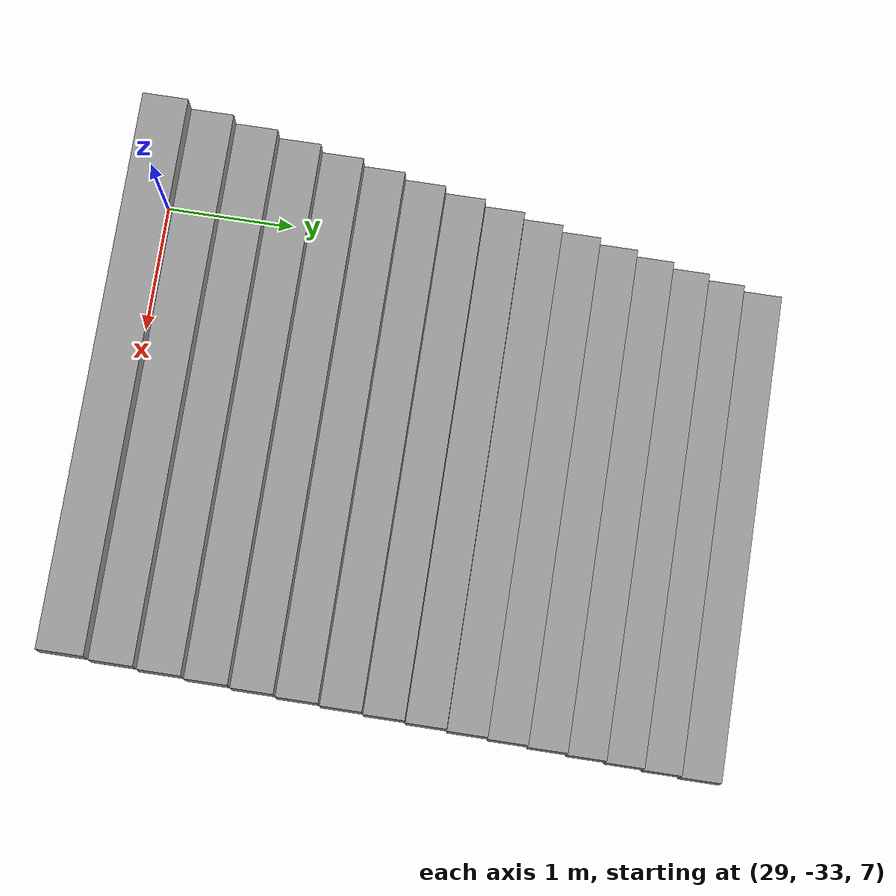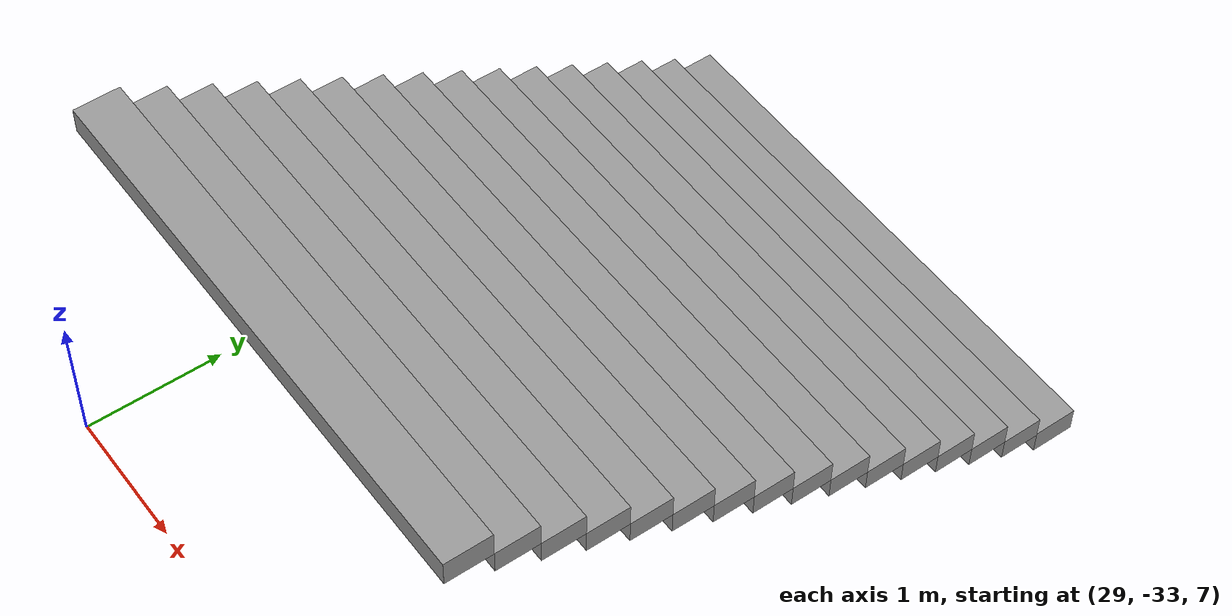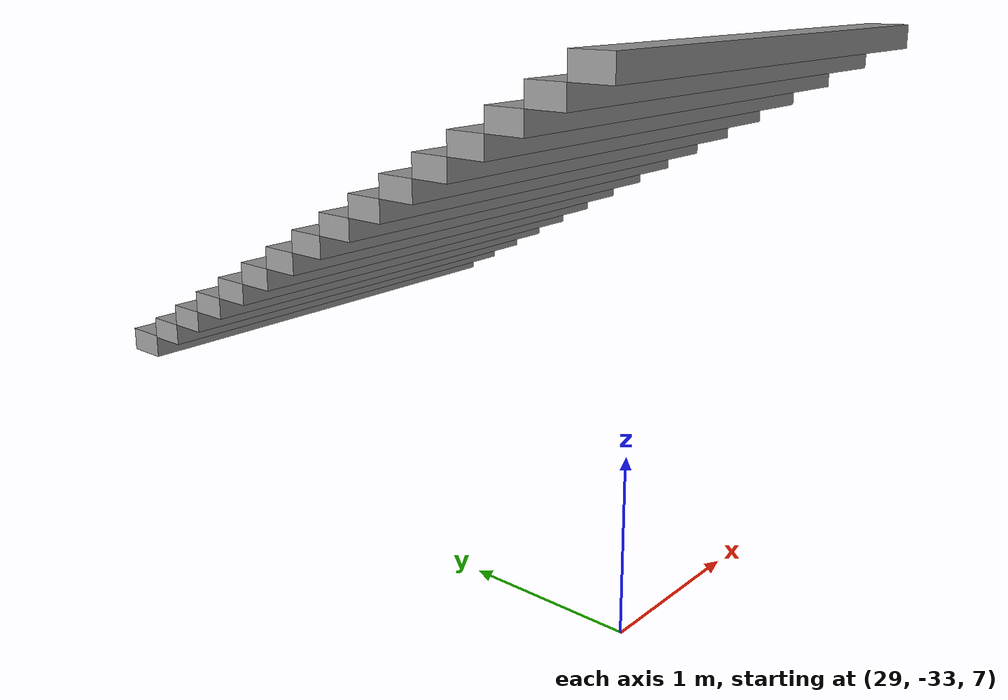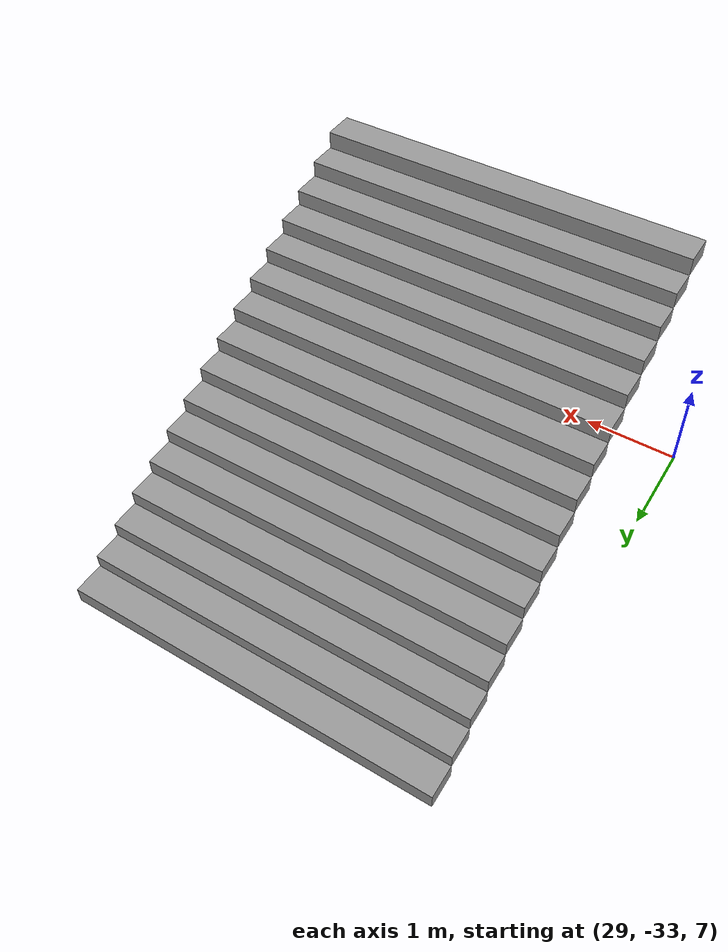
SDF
<sdf version="1.7">
 <world name="world">
  <include><uri>model://sun</uri></include>
  <model name="stairs_new_clone_0_clone">
   <pose>31.03 -26.62000 7.565 0 -0 -1.570796</pose>
   <link name="Stairs">
    <pose>3 1e-06 0 0 -0 0</pose>
    <inertial>
     <mass>1</mass>
     <inertia><ixx>1</ixx><ixy>0</ixy><ixz>0</ixz><iyy>1</iyy><iyz>0</iyz><izz>1</izz></inertia>
    </inertial>
    <visual name="Stairs_Visual_7">
     <pose>0.70875 0 1.09375 0 -0 1.5708</pose>
     <geometry><box><size>3.66 0.28125 0.15625</size></box></geometry>
     <material>
      <script><uri>file://media/materials/scripts/gazebo.material</uri><name>Gazebo/Grey</name></script>
      <ambient>1 1 1 1</ambient>
      <shader type="pixel"><normal_map>__default__</normal_map></shader>
      <diffuse>0.7 0.7 0.7 1</diffuse>
      <specular>0.01 0.01 0.01 1</specular>
      <emissive>0 0 0 1</emissive>
     </material>
     <meta><layer>0</layer></meta>
    </visual>
    <visual name="Stairs_Visual_10">
     <pose>1.5525 0 1.5625 0 -0 1.5708</pose>
     <geometry><box><size>3.66 0.28125 0.15625</size></box></geometry>
     <material>
      <script><uri>file://media/materials/scripts/gazebo.material</uri><name>Gazebo/Grey</name></script>
      <ambient>1 1 1 1</ambient>
      <shader type="pixel"><normal_map>__default__</normal_map></shader>
      <diffuse>0.7 0.7 0.7 1</diffuse>
      <specular>0.01 0.01 0.01 1</specular>
      <emissive>0 0 0 1</emissive>
     </material>
     <meta><layer>0</layer></meta>
    </visual>
    <visual name="Stairs_Visual_11">
     <pose>1.83375 0 1.71875 0 -0 1.5708</pose>
     <geometry><box><size>3.66 0.28125 0.15625</size></box></geometry>
     <material>
      <script><uri>file://media/materials/scripts/gazebo.material</uri><name>Gazebo/Grey</name></script>
      <ambient>1 1 1 1</ambient>
      <shader type="pixel"><normal_map>__default__</normal_map></shader>
      <diffuse>0.7 0.7 0.7 1</diffuse>
      <specular>0.01 0.01 0.01 1</specular>
      <emissive>0 0 0 1</emissive>
     </material>
     <meta><layer>0</layer></meta>
    </visual>
    <visual name="Stairs_Visual_1">
     <pose>-0.97875 0 0.15625 0 -0 1.5708</pose>
     <geometry><box><size>3.66 0.28125 0.15625</size></box></geometry>
     <material>
      <script><uri>file://media/materials/scripts/gazebo.material</uri><name>Gazebo/Grey</name></script>
      <ambient>1 1 1 1</ambient>
      <shader type="pixel"><normal_map>__default__</normal_map></shader>
      <diffuse>0.7 0.7 0.7 1</diffuse>
      <specular>0.01 0.01 0.01 1</specular>
      <emissive>0 0 0 1</emissive>
     </material>
     <meta><layer>0</layer></meta>
    </visual>
    <visual name="Stairs_Visual_8">
     <pose>0.99 0 1.25 0 -0 1.5708</pose>
     <geometry><box><size>3.66 0.28125 0.15625</size></box></geometry>
     <material>
      <script><uri>file://media/materials/scripts/gazebo.material</uri><name>Gazebo/Grey</name></script>
      <ambient>1 1 1 1</ambient>
      <shader type="pixel"><normal_map>__default__</normal_map></shader>
      <diffuse>0.7 0.7 0.7 1</diffuse>
      <specular>0.01 0.01 0.01 1</specular>
      <emissive>0 0 0 1</emissive>
     </material>
     <meta><layer>0</layer></meta>
    </visual>
    <visual name="Stairs_Visual_2">
     <pose>-0.6975 0 0.3125 0 -0 1.5708</pose>
     <geometry><box><size>3.66 0.28125 0.15625</size></box></geometry>
     <material>
      <script><uri>file://media/materials/scripts/gazebo.material</uri><name>Gazebo/Grey</name></script>
      <ambient>1 1 1 1</ambient>
      <shader type="pixel"><normal_map>__default__</normal_map></shader>
      <diffuse>0.7 0.7 0.7 1</diffuse>
      <specular>0.01 0.01 0.01 1</specular>
      <emissive>0 0 0 1</emissive>
     </material>
     <meta><layer>0</layer></meta>
    </visual>
    <visual name="Stairs_Visual_0">
     <pose>-1.27 0 0.005 0 -0 1.5708</pose>
     <geometry><box><size>3.66 0.3 0.17</size></box></geometry>
     <material>
      <script><uri>file://media/materials/scripts/gazebo.material</uri><name>Gazebo/Grey</name></script>
      <ambient>1 1 1 1</ambient>
      <shader type="pixel"><normal_map>__default__</normal_map></shader>
      <diffuse>0.7 0.7 0.7 1</diffuse>
      <specular>0.01 0.01 0.01 1</specular>
      <emissive>0 0 0 1</emissive>
     </material>
     <meta><layer>0</layer></meta>
    </visual>
    <visual name="Stairs_Visual_12">
     <pose>2.115 0 1.875 0 -0 1.5708</pose>
     <geometry><box><size>3.66 0.28125 0.15625</size></box></geometry>
     <material>
      <script><uri>file://media/materials/scripts/gazebo.material</uri><name>Gazebo/Grey</name></script>
      <ambient>1 1 1 1</ambient>
      <shader type="pixel"><normal_map>__default__</normal_map></shader>
      <diffuse>0.7 0.7 0.7 1</diffuse>
      <specular>0.01 0.01 0.01 1</specular>
      <emissive>0 0 0 1</emissive>
     </material>
     <meta><layer>0</layer></meta>
    </visual>
    <visual name="Stairs_Visual_9">
     <pose>1.27125 0 1.40625 0 -0 1.5708</pose>
     <geometry><box><size>3.66 0.28125 0.15625</size></box></geometry>
     <material>
      <script><uri>file://media/materials/scripts/gazebo.material</uri><name>Gazebo/Grey</name></script>
      <ambient>1 1 1 1</ambient>
      <shader type="pixel"><normal_map>__default__</normal_map></shader>
      <diffuse>0.7 0.7 0.7 1</diffuse>
      <specular>0.01 0.01 0.01 1</specular>
      <emissive>0 0 0 1</emissive>
     </material>
     <meta><layer>0</layer></meta>
    </visual>
    <visual name="Stairs_Visual_13">
     <pose>2.39625 0 2.03125 0 -0 1.5708</pose>
     <geometry><box><size>3.66 0.28125 0.15625</size></box></geometry>
     <material>
      <script><uri>file://media/materials/scripts/gazebo.material</uri><name>Gazebo/Grey</name></script>
      <ambient>1 1 1 1</ambient>
      <shader type="pixel"><normal_map>__default__</normal_map></shader>
      <diffuse>0.7 0.7 0.7 1</diffuse>
      <specular>0.01 0.01 0.01 1</specular>
      <emissive>0 0 0 1</emissive>
     </material>
     <meta><layer>0</layer></meta>
    </visual>
    <visual name="Stairs_Visual_4">
     <pose>-0.135 0 0.625 0 -0 1.5708</pose>
     <geometry><box><size>3.66 0.28125 0.15625</size></box></geometry>
     <material>
      <script><uri>file://media/materials/scripts/gazebo.material</uri><name>Gazebo/Grey</name></script>
      <ambient>1 1 1 1</ambient>
      <shader type="pixel"><normal_map>__default__</normal_map></shader>
      <diffuse>0.7 0.7 0.7 1</diffuse>
      <specular>0.01 0.01 0.01 1</specular>
      <emissive>0 0 0 1</emissive>
     </material>
     <meta><layer>0</layer></meta>
    </visual>
    <visual name="Stairs_Visual_5">
     <pose>0.14625 0 0.78125 0 -0 1.5708</pose>
     <geometry><box><size>3.66 0.28125 0.15625</size></box></geometry>
     <material>
      <script><uri>file://media/materials/scripts/gazebo.material</uri><name>Gazebo/Grey</name></script>
      <ambient>1 1 1 1</ambient>
      <shader type="pixel"><normal_map>__default__</normal_map></shader>
      <diffuse>0.7 0.7 0.7 1</diffuse>
      <specular>0.01 0.01 0.01 1</specular>
      <emissive>0 0 0 1</emissive>
     </material>
     <meta><layer>0</layer></meta>
    </visual>
    <visual name="Stairs_Visual_15">
     <pose>2.969 0 2.35 0 -0 1.5708</pose>
     <geometry><box><size>3.66 0.3 0.17</size></box></geometry>
     <material>
      <script><uri>file://media/materials/scripts/gazebo.material</uri><name>Gazebo/Grey</name></script>
      <ambient>1 1 1 1</ambient>
      <shader type="pixel"><normal_map>__default__</normal_map></shader>
      <diffuse>0.7 0.7 0.7 1</diffuse>
      <specular>0.01 0.01 0.01 1</specular>
      <emissive>0 0 0 1</emissive>
     </material>
     <meta><layer>0</layer></meta>
    </visual>
    <visual name="Stairs_Visual_3">
     <pose>-0.41625 0 0.46875 0 -0 1.5708</pose>
     <geometry><box><size>3.66 0.28125 0.15625</size></box></geometry>
     <material>
      <script><uri>file://media/materials/scripts/gazebo.material</uri><name>Gazebo/Grey</name></script>
      <ambient>1 1 1 1</ambient>
      <shader type="pixel"><normal_map>__default__</normal_map></shader>
      <diffuse>0.7 0.7 0.7 1</diffuse>
      <specular>0.01 0.01 0.01 1</specular>
      <emissive>0 0 0 1</emissive>
     </material>
     <meta><layer>0</layer></meta>
    </visual>
    <visual name="Stairs_Visual_6">
     <pose>0.4275 0 0.9375 0 -0 1.5708</pose>
     <geometry><box><size>3.66 0.28125 0.15625</size></box></geometry>
     <material>
      <script><uri>file://media/materials/scripts/gazebo.material</uri><name>Gazebo/Grey</name></script>
      <ambient>1 1 1 1</ambient>
      <shader type="pixel"><normal_map>__default__</normal_map></shader>
      <diffuse>0.7 0.7 0.7 1</diffuse>
      <specular>0.01 0.01 0.01 1</specular>
      <emissive>0 0 0 1</emissive>
     </material>
     <meta><layer>0</layer></meta>
    </visual>
    <visual name="Stairs_Visual_14">
     <pose>2.6775 0 2.1875 0 -0 1.5708</pose>
     <geometry><box><size>3.66 0.28125 0.15625</size></box></geometry>
     <material>
      <script><uri>file://media/materials/scripts/gazebo.material</uri><name>Gazebo/Grey</name></script>
      <ambient>1 1 1 1</ambient>
      <shader type="pixel"><normal_map>__default__</normal_map></shader>
      <diffuse>0.7 0.7 0.7 1</diffuse>
      <specular>0.01 0.01 0.01 1</specular>
      <emissive>0 0 0 1</emissive>
     </material>
     <meta><layer>0</layer></meta>
    </visual>
    <collision name="Stairs_Collision_9">
     <pose>1.27125 0 1.40625 0 -0 1.5708</pose>
     <geometry><box><size>3.66 0.28125 0.15625</size></box></geometry>
     <surface>
      <friction>
       <ode><mu>1</mu><mu2>1</mu2><fdir1>0 0 0</fdir1><slip1>0</slip1><slip2>0</slip2></ode>
       <torsional>
        <coefficient>1</coefficient>
        <patch_radius>0</patch_radius>
        <surface_radius>0</surface_radius>
        <use_patch_radius>1</use_patch_radius>
        <ode><slip>0</slip></ode>
       </torsional>
      </friction>
      <bounce><restitution_coefficient>0</restitution_coefficient><threshold>1e+06</threshold></bounce>
      <contact>
       <collide_without_contact>0</collide_without_contact>
       <collide_without_contact_bitmask>1</collide_without_contact_bitmask>
       <collide_bitmask>1</collide_bitmask>
       <ode>
        <soft_cfm>0</soft_cfm>
        <soft_erp>0.2</soft_erp>
        <kp>1e+13</kp>
        <kd>1</kd>
        <max_vel>0.01</max_vel>
        <min_depth>0</min_depth>
       </ode>
       <bullet>
        <split_impulse>1</split_impulse>
        <split_impulse_penetration_threshold>-0.01</split_impulse_penetration_threshold>
        <soft_cfm>0</soft_cfm>
        <soft_erp>0.2</soft_erp>
        <kp>1e+13</kp>
        <kd>1</kd>
       </bullet>
      </contact>
     </surface>
    </collision>
    <collision name="Stairs_Collision_1">
     <pose>-0.97875 0 0.15625 0 -0 1.5708</pose>
     <geometry><box><size>3.66 0.3 0.1566</size></box></geometry>
     <surface>
      <friction>
       <ode><mu>1</mu><mu2>1</mu2><fdir1>0 0 0</fdir1><slip1>0</slip1><slip2>0</slip2></ode>
       <torsional>
        <coefficient>1</coefficient>
        <patch_radius>0</patch_radius>
        <surface_radius>0</surface_radius>
        <use_patch_radius>1</use_patch_radius>
        <ode><slip>0</slip></ode>
       </torsional>
      </friction>
      <bounce><restitution_coefficient>0</restitution_coefficient><threshold>1e+06</threshold></bounce>
      <contact>
       <collide_without_contact>0</collide_without_contact>
       <collide_without_contact_bitmask>1</collide_without_contact_bitmask>
       <collide_bitmask>1</collide_bitmask>
       <ode>
        <soft_cfm>0</soft_cfm>
        <soft_erp>0.2</soft_erp>
        <kp>1e+13</kp>
        <kd>1</kd>
        <max_vel>0.01</max_vel>
        <min_depth>0</min_depth>
       </ode>
       <bullet>
        <split_impulse>1</split_impulse>
        <split_impulse_penetration_threshold>-0.01</split_impulse_penetration_threshold>
        <soft_cfm>0</soft_cfm>
        <soft_erp>0.2</soft_erp>
        <kp>1e+13</kp>
        <kd>1</kd>
       </bullet>
      </contact>
     </surface>
    </collision>
    <collision name="Stairs_Collision_6">
     <pose>0.4275 0 0.9375 0 -0 1.5708</pose>
     <geometry><box><size>3.66 0.28125 0.15625</size></box></geometry>
     <surface>
      <friction>
       <ode><mu>1</mu><mu2>1</mu2><fdir1>0 0 0</fdir1><slip1>0</slip1><slip2>0</slip2></ode>
       <torsional>
        <coefficient>1</coefficient>
        <patch_radius>0</patch_radius>
        <surface_radius>0</surface_radius>
        <use_patch_radius>1</use_patch_radius>
        <ode><slip>0</slip></ode>
       </torsional>
      </friction>
      <bounce><restitution_coefficient>0</restitution_coefficient><threshold>1e+06</threshold></bounce>
      <contact>
       <collide_without_contact>0</collide_without_contact>
       <collide_without_contact_bitmask>1</collide_without_contact_bitmask>
       <collide_bitmask>1</collide_bitmask>
       <ode>
        <soft_cfm>0</soft_cfm>
        <soft_erp>0.2</soft_erp>
        <kp>1e+13</kp>
        <kd>1</kd>
        <max_vel>0.01</max_vel>
        <min_depth>0</min_depth>
       </ode>
       <bullet>
        <split_impulse>1</split_impulse>
        <split_impulse_penetration_threshold>-0.01</split_impulse_penetration_threshold>
        <soft_cfm>0</soft_cfm>
        <soft_erp>0.2</soft_erp>
        <kp>1e+13</kp>
        <kd>1</kd>
       </bullet>
      </contact>
     </surface>
    </collision>
    <collision name="Stairs_Collision_7">
     <pose>0.70875 0 1.09375 0 -0 1.5708</pose>
     <geometry><box><size>3.66 0.28125 0.15625</size></box></geometry>
     <surface>
      <friction>
       <ode><mu>1</mu><mu2>1</mu2><fdir1>0 0 0</fdir1><slip1>0</slip1><slip2>0</slip2></ode>
       <torsional>
        <coefficient>1</coefficient>
        <patch_radius>0</patch_radius>
        <surface_radius>0</surface_radius>
        <use_patch_radius>1</use_patch_radius>
        <ode><slip>0</slip></ode>
       </torsional>
      </friction>
      <bounce><restitution_coefficient>0</restitution_coefficient><threshold>1e+06</threshold></bounce>
      <contact>
       <collide_without_contact>0</collide_without_contact>
       <collide_without_contact_bitmask>1</collide_without_contact_bitmask>
       <collide_bitmask>1</collide_bitmask>
       <ode>
        <soft_cfm>0</soft_cfm>
        <soft_erp>0.2</soft_erp>
        <kp>1e+13</kp>
        <kd>1</kd>
        <max_vel>0.01</max_vel>
        <min_depth>0</min_depth>
       </ode>
       <bullet>
        <split_impulse>1</split_impulse>
        <split_impulse_penetration_threshold>-0.01</split_impulse_penetration_threshold>
        <soft_cfm>0</soft_cfm>
        <soft_erp>0.2</soft_erp>
        <kp>1e+13</kp>
        <kd>1</kd>
       </bullet>
      </contact>
     </surface>
    </collision>
    <collision name="Stairs_Collision_5">
     <pose>0.14625 0 0.78125 0 -0 1.5708</pose>
     <geometry><box><size>3.66 0.28125 0.15625</size></box></geometry>
     <surface>
      <friction>
       <ode><mu>1</mu><mu2>1</mu2><fdir1>0 0 0</fdir1><slip1>0</slip1><slip2>0</slip2></ode>
       <torsional>
        <coefficient>1</coefficient>
        <patch_radius>0</patch_radius>
        <surface_radius>0</surface_radius>
        <use_patch_radius>1</use_patch_radius>
        <ode><slip>0</slip></ode>
       </torsional>
      </friction>
      <bounce><restitution_coefficient>0</restitution_coefficient><threshold>1e+06</threshold></bounce>
      <contact>
       <collide_without_contact>0</collide_without_contact>
       <collide_without_contact_bitmask>1</collide_without_contact_bitmask>
       <collide_bitmask>1</collide_bitmask>
       <ode>
        <soft_cfm>0</soft_cfm>
        <soft_erp>0.2</soft_erp>
        <kp>1e+13</kp>
        <kd>1</kd>
        <max_vel>0.01</max_vel>
        <min_depth>0</min_depth>
       </ode>
       <bullet>
        <split_impulse>1</split_impulse>
        <split_impulse_penetration_threshold>-0.01</split_impulse_penetration_threshold>
        <soft_cfm>0</soft_cfm>
        <soft_erp>0.2</soft_erp>
        <kp>1e+13</kp>
        <kd>1</kd>
       </bullet>
      </contact>
     </surface>
    </collision>
    <collision name="Stairs_Collision_10">
     <pose>1.5525 0 1.5625 0 -0 1.5708</pose>
     <geometry><box><size>3.66 0.28125 0.15625</size></box></geometry>
     <surface>
      <friction>
       <ode><mu>1</mu><mu2>1</mu2><fdir1>0 0 0</fdir1><slip1>0</slip1><slip2>0</slip2></ode>
       <torsional>
        <coefficient>1</coefficient>
        <patch_radius>0</patch_radius>
        <surface_radius>0</surface_radius>
        <use_patch_radius>1</use_patch_radius>
        <ode><slip>0</slip></ode>
       </torsional>
      </friction>
      <bounce><restitution_coefficient>0</restitution_coefficient><threshold>1e+06</threshold></bounce>
      <contact>
       <collide_without_contact>0</collide_without_contact>
       <collide_without_contact_bitmask>1</collide_without_contact_bitmask>
       <collide_bitmask>1</collide_bitmask>
       <ode>
        <soft_cfm>0</soft_cfm>
        <soft_erp>0.2</soft_erp>
        <kp>1e+13</kp>
        <kd>1</kd>
        <max_vel>0.01</max_vel>
        <min_depth>0</min_depth>
       </ode>
       <bullet>
        <split_impulse>1</split_impulse>
        <split_impulse_penetration_threshold>-0.01</split_impulse_penetration_threshold>
        <soft_cfm>0</soft_cfm>
        <soft_erp>0.2</soft_erp>
        <kp>1e+13</kp>
        <kd>1</kd>
       </bullet>
      </contact>
     </surface>
    </collision>
    <collision name="Stairs_Collision_2">
     <pose>-0.6975 0 0.3125 0 -0 1.5708</pose>
     <geometry><box><size>3.66 0.28125 0.15625</size></box></geometry>
     <surface>
      <friction>
       <ode><mu>1</mu><mu2>1</mu2><fdir1>0 0 0</fdir1><slip1>0</slip1><slip2>0</slip2></ode>
       <torsional>
        <coefficient>1</coefficient>
        <patch_radius>0</patch_radius>
        <surface_radius>0</surface_radius>
        <use_patch_radius>1</use_patch_radius>
        <ode><slip>0</slip></ode>
       </torsional>
      </friction>
      <bounce><restitution_coefficient>0</restitution_coefficient><threshold>1e+06</threshold></bounce>
      <contact>
       <collide_without_contact>0</collide_without_contact>
       <collide_without_contact_bitmask>1</collide_without_contact_bitmask>
       <collide_bitmask>1</collide_bitmask>
       <ode>
        <soft_cfm>0</soft_cfm>
        <soft_erp>0.2</soft_erp>
        <kp>1e+13</kp>
        <kd>1</kd>
        <max_vel>0.01</max_vel>
        <min_depth>0</min_depth>
       </ode>
       <bullet>
        <split_impulse>1</split_impulse>
        <split_impulse_penetration_threshold>-0.01</split_impulse_penetration_threshold>
        <soft_cfm>0</soft_cfm>
        <soft_erp>0.2</soft_erp>
        <kp>1e+13</kp>
        <kd>1</kd>
       </bullet>
      </contact>
     </surface>
    </collision>
    <collision name="Stairs_Collision_8">
     <pose>0.99 0 1.25 0 -0 1.5708</pose>
     <geometry><box><size>3.66 0.28125 0.15625</size></box></geometry>
     <surface>
      <friction>
       <ode><mu>1</mu><mu2>1</mu2><fdir1>0 0 0</fdir1><slip1>0</slip1><slip2>0</slip2></ode>
       <torsional>
        <coefficient>1</coefficient>
        <patch_radius>0</patch_radius>
        <surface_radius>0</surface_radius>
        <use_patch_radius>1</use_patch_radius>
        <ode><slip>0</slip></ode>
       </torsional>
      </friction>
      <bounce><restitution_coefficient>0</restitution_coefficient><threshold>1e+06</threshold></bounce>
      <contact>
       <collide_without_contact>0</collide_without_contact>
       <collide_without_contact_bitmask>1</collide_without_contact_bitmask>
       <collide_bitmask>1</collide_bitmask>
       <ode>
        <soft_cfm>0</soft_cfm>
        <soft_erp>0.2</soft_erp>
        <kp>1e+13</kp>
        <kd>1</kd>
        <max_vel>0.01</max_vel>
        <min_depth>0</min_depth>
       </ode>
       <bullet>
        <split_impulse>1</split_impulse>
        <split_impulse_penetration_threshold>-0.01</split_impulse_penetration_threshold>
        <soft_cfm>0</soft_cfm>
        <soft_erp>0.2</soft_erp>
        <kp>1e+13</kp>
        <kd>1</kd>
       </bullet>
      </contact>
     </surface>
    </collision>
    <collision name="Stairs_Collision_4">
     <pose>-0.135 0 0.625 0 -0 1.5708</pose>
     <geometry><box><size>3.66 0.30125 0.15625</size></box></geometry>
     <surface>
      <friction>
       <ode><mu>1</mu><mu2>1</mu2><fdir1>0 0 0</fdir1><slip1>0</slip1><slip2>0</slip2></ode>
       <torsional>
        <coefficient>1</coefficient>
        <patch_radius>0</patch_radius>
        <surface_radius>0</surface_radius>
        <use_patch_radius>1</use_patch_radius>
        <ode><slip>0</slip></ode>
       </torsional>
      </friction>
      <bounce><restitution_coefficient>0</restitution_coefficient><threshold>1e+06</threshold></bounce>
      <contact>
       <collide_without_contact>0</collide_without_contact>
       <collide_without_contact_bitmask>1</collide_without_contact_bitmask>
       <collide_bitmask>1</collide_bitmask>
       <ode>
        <soft_cfm>0</soft_cfm>
        <soft_erp>0.2</soft_erp>
        <kp>1e+13</kp>
        <kd>1</kd>
        <max_vel>0.01</max_vel>
        <min_depth>0</min_depth>
       </ode>
       <bullet>
        <split_impulse>1</split_impulse>
        <split_impulse_penetration_threshold>-0.01</split_impulse_penetration_threshold>
        <soft_cfm>0</soft_cfm>
        <soft_erp>0.2</soft_erp>
        <kp>1e+13</kp>
        <kd>1</kd>
       </bullet>
      </contact>
     </surface>
    </collision>
    <collision name="Stairs_Collision_13">
     <pose>2.39625 0 2.03125 0 -0 1.5708</pose>
     <geometry><box><size>3.66 0.28125 0.15625</size></box></geometry>
     <surface>
      <friction>
       <ode><mu>1</mu><mu2>1</mu2><fdir1>0 0 0</fdir1><slip1>0</slip1><slip2>0</slip2></ode>
       <torsional>
        <coefficient>1</coefficient>
        <patch_radius>0</patch_radius>
        <surface_radius>0</surface_radius>
        <use_patch_radius>1</use_patch_radius>
        <ode><slip>0</slip></ode>
       </torsional>
      </friction>
      <bounce><restitution_coefficient>0</restitution_coefficient><threshold>1e+06</threshold></bounce>
      <contact>
       <collide_without_contact>0</collide_without_contact>
       <collide_without_contact_bitmask>1</collide_without_contact_bitmask>
       <collide_bitmask>1</collide_bitmask>
       <ode>
        <soft_cfm>0</soft_cfm>
        <soft_erp>0.2</soft_erp>
        <kp>1e+13</kp>
        <kd>1</kd>
        <max_vel>0.01</max_vel>
        <min_depth>0</min_depth>
       </ode>
       <bullet>
        <split_impulse>1</split_impulse>
        <split_impulse_penetration_threshold>-0.01</split_impulse_penetration_threshold>
        <soft_cfm>0</soft_cfm>
        <soft_erp>0.2</soft_erp>
        <kp>1e+13</kp>
        <kd>1</kd>
       </bullet>
      </contact>
     </surface>
    </collision>
    <collision name="Stairs_Collision_11">
     <pose>1.83375 0 1.71875 0 -0 1.5708</pose>
     <geometry><box><size>3.66 0.28125 0.15625</size></box></geometry>
     <surface>
      <friction>
       <ode><mu>1</mu><mu2>1</mu2><fdir1>0 0 0</fdir1><slip1>0</slip1><slip2>0</slip2></ode>
       <torsional>
        <coefficient>1</coefficient>
        <patch_radius>0</patch_radius>
        <surface_radius>0</surface_radius>
        <use_patch_radius>1</use_patch_radius>
        <ode><slip>0</slip></ode>
       </torsional>
      </friction>
      <bounce><restitution_coefficient>0</restitution_coefficient><threshold>1e+06</threshold></bounce>
      <contact>
       <collide_without_contact>0</collide_without_contact>
       <collide_without_contact_bitmask>1</collide_without_contact_bitmask>
       <collide_bitmask>1</collide_bitmask>
       <ode>
        <soft_cfm>0</soft_cfm>
        <soft_erp>0.2</soft_erp>
        <kp>1e+13</kp>
        <kd>1</kd>
        <max_vel>0.01</max_vel>
        <min_depth>0</min_depth>
       </ode>
       <bullet>
        <split_impulse>1</split_impulse>
        <split_impulse_penetration_threshold>-0.01</split_impulse_penetration_threshold>
        <soft_cfm>0</soft_cfm>
        <soft_erp>0.2</soft_erp>
        <kp>1e+13</kp>
        <kd>1</kd>
       </bullet>
      </contact>
     </surface>
    </collision>
    <collision name="Stairs_Collision_0">
     <pose>-1.27 0 -0.005 0 -0 1.5708</pose>
     <geometry><box><size>3.66 0.3 0.2</size></box></geometry>
     <surface>
      <friction>
       <ode><mu>1</mu><mu2>1</mu2><fdir1>0 0 0</fdir1><slip1>0</slip1><slip2>0</slip2></ode>
       <torsional>
        <coefficient>1</coefficient>
        <patch_radius>0</patch_radius>
        <surface_radius>0</surface_radius>
        <use_patch_radius>1</use_patch_radius>
        <ode><slip>0</slip></ode>
       </torsional>
      </friction>
      <bounce><restitution_coefficient>0</restitution_coefficient><threshold>1e+06</threshold></bounce>
      <contact>
       <collide_without_contact>0</collide_without_contact>
       <collide_without_contact_bitmask>1</collide_without_contact_bitmask>
       <collide_bitmask>1</collide_bitmask>
       <ode>
        <soft_cfm>0</soft_cfm>
        <soft_erp>0.2</soft_erp>
        <kp>1e+13</kp>
        <kd>1</kd>
        <max_vel>0.01</max_vel>
        <min_depth>0</min_depth>
       </ode>
       <bullet>
        <split_impulse>1</split_impulse>
        <split_impulse_penetration_threshold>-0.01</split_impulse_penetration_threshold>
        <soft_cfm>0</soft_cfm>
        <soft_erp>0.2</soft_erp>
        <kp>1e+13</kp>
        <kd>1</kd>
       </bullet>
      </contact>
     </surface>
    </collision>
    <collision name="Stairs_Collision_3">
     <pose>-0.41625 0 0.46875 0 -0 1.5708</pose>
     <geometry><box><size>3.66 0.28125 0.15625</size></box></geometry>
     <surface>
      <friction>
       <ode><mu>1</mu><mu2>1</mu2><fdir1>0 0 0</fdir1><slip1>0</slip1><slip2>0</slip2></ode>
       <torsional>
        <coefficient>1</coefficient>
        <patch_radius>0</patch_radius>
        <surface_radius>0</surface_radius>
        <use_patch_radius>1</use_patch_radius>
        <ode><slip>0</slip></ode>
       </torsional>
      </friction>
      <bounce><restitution_coefficient>0</restitution_coefficient><threshold>1e+06</threshold></bounce>
      <contact>
       <collide_without_contact>0</collide_without_contact>
       <collide_without_contact_bitmask>1</collide_without_contact_bitmask>
       <collide_bitmask>1</collide_bitmask>
       <ode>
        <soft_cfm>0</soft_cfm>
        <soft_erp>0.2</soft_erp>
        <kp>1e+13</kp>
        <kd>1</kd>
        <max_vel>0.01</max_vel>
        <min_depth>0</min_depth>
       </ode>
       <bullet>
        <split_impulse>1</split_impulse>
        <split_impulse_penetration_threshold>-0.01</split_impulse_penetration_threshold>
        <soft_cfm>0</soft_cfm>
        <soft_erp>0.2</soft_erp>
        <kp>1e+13</kp>
        <kd>1</kd>
       </bullet>
      </contact>
     </surface>
    </collision>
    <collision name="Stairs_Collision_12">
     <pose>2.115 0 1.875 0 -0 1.5708</pose>
     <geometry><box><size>3.66 0.28125 0.15625</size></box></geometry>
     <surface>
      <friction>
       <ode><mu>1</mu><mu2>1</mu2><fdir1>0 0 0</fdir1><slip1>0</slip1><slip2>0</slip2></ode>
       <torsional>
        <coefficient>1</coefficient>
        <patch_radius>0</patch_radius>
        <surface_radius>0</surface_radius>
        <use_patch_radius>1</use_patch_radius>
        <ode><slip>0</slip></ode>
       </torsional>
      </friction>
      <bounce><restitution_coefficient>0</restitution_coefficient><threshold>1e+06</threshold></bounce>
      <contact>
       <collide_without_contact>0</collide_without_contact>
       <collide_without_contact_bitmask>1</collide_without_contact_bitmask>
       <collide_bitmask>1</collide_bitmask>
       <ode>
        <soft_cfm>0</soft_cfm>
        <soft_erp>0.2</soft_erp>
        <kp>1e+13</kp>
        <kd>1</kd>
        <max_vel>0.01</max_vel>
        <min_depth>0</min_depth>
       </ode>
       <bullet>
        <split_impulse>1</split_impulse>
        <split_impulse_penetration_threshold>-0.01</split_impulse_penetration_threshold>
        <soft_cfm>0</soft_cfm>
        <soft_erp>0.2</soft_erp>
        <kp>1e+13</kp>
        <kd>1</kd>
       </bullet>
      </contact>
     </surface>
    </collision>
    <collision name="Stairs_Collision_14">
     <pose>2.6775 0 2.1875 0 -0 1.5708</pose>
     <geometry><box><size>3.66 0.28125 0.15625</size></box></geometry>
     <surface>
      <friction>
       <ode><mu>1</mu><mu2>1</mu2><fdir1>0 0 0</fdir1><slip1>0</slip1><slip2>0</slip2></ode>
       <torsional>
        <coefficient>1</coefficient>
        <patch_radius>0</patch_radius>
        <surface_radius>0</surface_radius>
        <use_patch_radius>1</use_patch_radius>
        <ode><slip>0</slip></ode>
       </torsional>
      </friction>
      <bounce><restitution_coefficient>0</restitution_coefficient><threshold>1e+06</threshold></bounce>
      <contact>
       <collide_without_contact>0</collide_without_contact>
       <collide_without_contact_bitmask>1</collide_without_contact_bitmask>
       <collide_bitmask>1</collide_bitmask>
       <ode>
        <soft_cfm>0</soft_cfm>
        <soft_erp>0.2</soft_erp>
        <kp>1e+13</kp>
        <kd>1</kd>
        <max_vel>0.01</max_vel>
        <min_depth>0</min_depth>
       </ode>
       <bullet>
        <split_impulse>1</split_impulse>
        <split_impulse_penetration_threshold>-0.01</split_impulse_penetration_threshold>
        <soft_cfm>0</soft_cfm>
        <soft_erp>0.2</soft_erp>
        <kp>1e+13</kp>
        <kd>1</kd>
       </bullet>
      </contact>
     </surface>
    </collision>
    <collision name="Stairs_Collision_15">
     <pose>2.969 0 2.35 0 -0 1.5708</pose>
     <geometry><box><size>3.66 0.3 0.17</size></box></geometry>
     <surface>
      <friction>
       <ode><mu>1</mu><mu2>1</mu2><fdir1>0 0 0</fdir1><slip1>0</slip1><slip2>0</slip2></ode>
       <torsional>
        <coefficient>1</coefficient>
        <patch_radius>0</patch_radius>
        <surface_radius>0</surface_radius>
        <use_patch_radius>1</use_patch_radius>
        <ode><slip>0</slip></ode>
       </torsional>
      </friction>
      <bounce><restitution_coefficient>0</restitution_coefficient><threshold>1e+06</threshold></bounce>
      <contact>
       <collide_without_contact>0</collide_without_contact>
       <collide_without_contact_bitmask>1</collide_without_contact_bitmask>
       <collide_bitmask>1</collide_bitmask>
       <ode>
        <soft_cfm>0</soft_cfm>
        <soft_erp>0.2</soft_erp>
        <kp>1e+13</kp>
        <kd>1</kd>
        <max_vel>0.01</max_vel>
        <min_depth>0</min_depth>
       </ode>
       <bullet>
        <split_impulse>1</split_impulse>
        <split_impulse_penetration_threshold>-0.01</split_impulse_penetration_threshold>
        <soft_cfm>0</soft_cfm>
        <soft_erp>0.2</soft_erp>
        <kp>1e+13</kp>
        <kd>1</kd>
       </bullet>
      </contact>
     </surface>
    </collision>
    <scale>1 1 1</scale>
   </link>
   <static>1</static>
   <pose>34.3858 -26.6303 2.565 0 0 -1.5708</pose>
  </model>
 </world>
</sdf>
